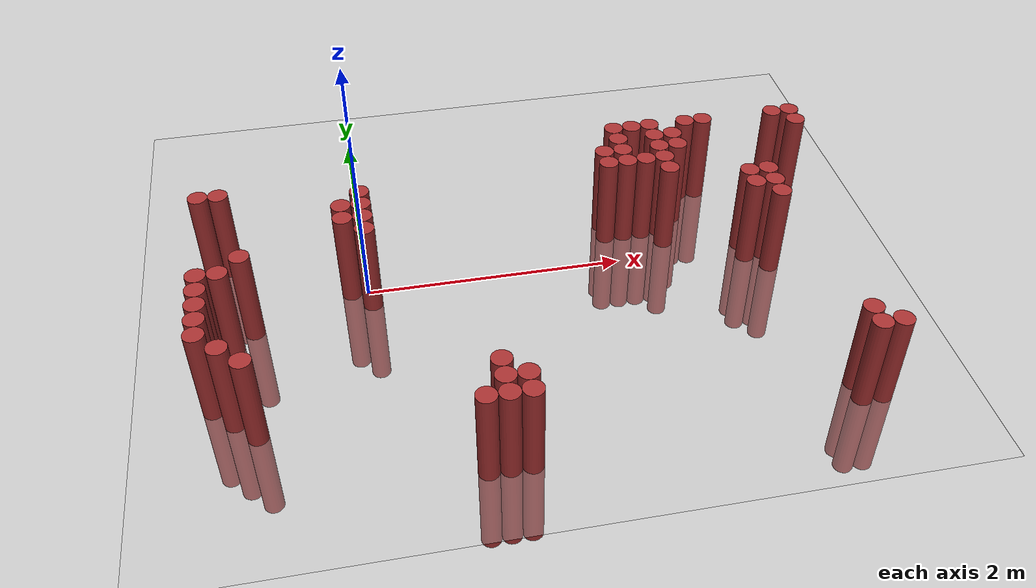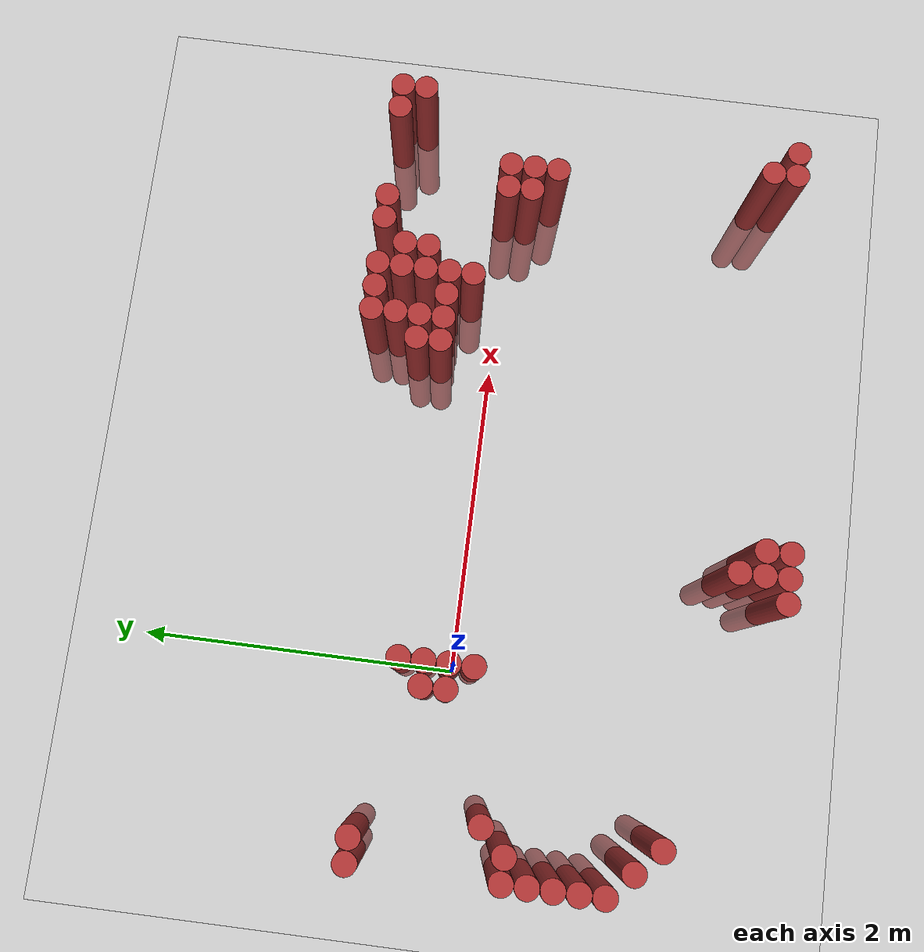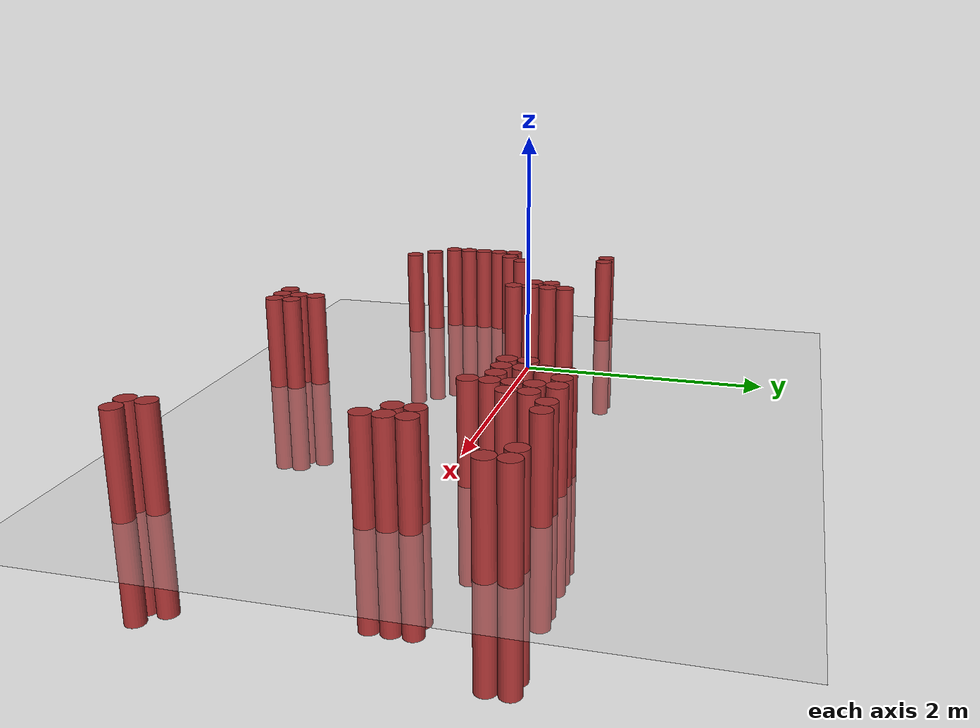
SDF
<sdf version="1.6">
 <world name="default">
  <model name="ground_plane">
   <static>1</static>
   <link name="link">
    <collision name="collision">
     <geometry><plane><normal>0 0 1</normal><size>100 100</size></plane></geometry>
     <surface><friction><ode><mu>100</mu><mu2>50</mu2></ode></friction></surface>
    </collision>
    <visual name="visual">
     <cast_shadows>0</cast_shadows>
     <geometry><plane><normal>0 0 1</normal><size>100 100</size></plane></geometry>
     <material>
      <script><uri>file://media/materials/scripts/gazebo.material</uri><name>Gazebo/Grey</name></script>
     </material>
    </visual>
   </link>
  </model>
  <model name="unit_cylinder_349">
   <static>1</static>
   <pose>-1.175000 -1.025000 0.000000 0.000000 0.000000 0.000000</pose>
   <link name="link">
    <inertial>
     <mass>1</mass>
     <inertia><ixx>0.145833</ixx><ixy>0</ixy><ixz>0</ixz><iyy>0.145833</iyy><iyz>0</iyz><izz>0.125</izz></inertia>
    </inertial>
    <collision name="collision">
     <geometry><cylinder><radius>0.075000</radius><length>1.5</length></cylinder></geometry>
    </collision>
    <visual name="visual">
     <geometry><cylinder><radius>0.075000</radius><length>1.5</length></cylinder></geometry>
     <material>
      <ambient>0.648000 0.192000 0.192000 1</ambient>
      <diffuse>0.648000 0.192000 0.192000 1</diffuse>
     </material>
     <material>
      <script><name>Gazebo/Grey</name><uri>file://media/materials/scripts/gazebo.material</uri></script>
     </material>
    </visual>
   </link>
  </model>
  <model name="unit_cylinder_350">
   <static>1</static>
   <pose>-1.175000 -0.875000 0.000000 0.000000 0.000000 0.000000</pose>
   <link name="link">
    <inertial>
     <mass>1</mass>
     <inertia><ixx>0.145833</ixx><ixy>0</ixy><ixz>0</ixz><iyy>0.145833</iyy><iyz>0</iyz><izz>0.125</izz></inertia>
    </inertial>
    <collision name="collision">
     <geometry><cylinder><radius>0.075000</radius><length>1.5</length></cylinder></geometry>
    </collision>
    <visual name="visual">
     <geometry><cylinder><radius>0.075000</radius><length>1.5</length></cylinder></geometry>
     <material>
      <ambient>0.648000 0.192000 0.192000 1</ambient>
      <diffuse>0.648000 0.192000 0.192000 1</diffuse>
     </material>
     <material>
      <script><name>Gazebo/Grey</name><uri>file://media/materials/scripts/gazebo.material</uri></script>
     </material>
    </visual>
   </link>
  </model>
  <model name="unit_cylinder_351">
   <static>1</static>
   <pose>-1.175000 -0.725000 0.000000 0.000000 0.000000 0.000000</pose>
   <link name="link">
    <inertial>
     <mass>1</mass>
     <inertia><ixx>0.145833</ixx><ixy>0</ixy><ixz>0</ixz><iyy>0.145833</iyy><iyz>0</iyz><izz>0.125</izz></inertia>
    </inertial>
    <collision name="collision">
     <geometry><cylinder><radius>0.075000</radius><length>1.5</length></cylinder></geometry>
    </collision>
    <visual name="visual">
     <geometry><cylinder><radius>0.075000</radius><length>1.5</length></cylinder></geometry>
     <material>
      <ambient>0.648000 0.192000 0.192000 1</ambient>
      <diffuse>0.648000 0.192000 0.192000 1</diffuse>
     </material>
     <material>
      <script><name>Gazebo/Grey</name><uri>file://media/materials/scripts/gazebo.material</uri></script>
     </material>
    </visual>
   </link>
  </model>
  <model name="unit_cylinder_352">
   <static>1</static>
   <pose>-1.175000 -0.575000 0.000000 0.000000 0.000000 0.000000</pose>
   <link name="link">
    <inertial>
     <mass>1</mass>
     <inertia><ixx>0.145833</ixx><ixy>0</ixy><ixz>0</ixz><iyy>0.145833</iyy><iyz>0</iyz><izz>0.125</izz></inertia>
    </inertial>
    <collision name="collision">
     <geometry><cylinder><radius>0.075000</radius><length>1.5</length></cylinder></geometry>
    </collision>
    <visual name="visual">
     <geometry><cylinder><radius>0.075000</radius><length>1.5</length></cylinder></geometry>
     <material>
      <ambient>0.648000 0.192000 0.192000 1</ambient>
      <diffuse>0.648000 0.192000 0.192000 1</diffuse>
     </material>
     <material>
      <script><name>Gazebo/Grey</name><uri>file://media/materials/scripts/gazebo.material</uri></script>
     </material>
    </visual>
   </link>
  </model>
  <model name="unit_cylinder_353">
   <static>1</static>
   <pose>-1.175000 -0.425000 0.000000 0.000000 0.000000 0.000000</pose>
   <link name="link">
    <inertial>
     <mass>1</mass>
     <inertia><ixx>0.145833</ixx><ixy>0</ixy><ixz>0</ixz><iyy>0.145833</iyy><iyz>0</iyz><izz>0.125</izz></inertia>
    </inertial>
    <collision name="collision">
     <geometry><cylinder><radius>0.075000</radius><length>1.5</length></cylinder></geometry>
    </collision>
    <visual name="visual">
     <geometry><cylinder><radius>0.075000</radius><length>1.5</length></cylinder></geometry>
     <material>
      <ambient>0.648000 0.192000 0.192000 1</ambient>
      <diffuse>0.648000 0.192000 0.192000 1</diffuse>
     </material>
     <material>
      <script><name>Gazebo/Grey</name><uri>file://media/materials/scripts/gazebo.material</uri></script>
     </material>
    </visual>
   </link>
  </model>
  <model name="unit_cylinder_354">
   <static>1</static>
   <pose>-1.175000 0.475000 0.000000 0.000000 0.000000 0.000000</pose>
   <link name="link">
    <inertial>
     <mass>1</mass>
     <inertia><ixx>0.145833</ixx><ixy>0</ixy><ixz>0</ixz><iyy>0.145833</iyy><iyz>0</iyz><izz>0.125</izz></inertia>
    </inertial>
    <collision name="collision">
     <geometry><cylinder><radius>0.075000</radius><length>1.5</length></cylinder></geometry>
    </collision>
    <visual name="visual">
     <geometry><cylinder><radius>0.075000</radius><length>1.5</length></cylinder></geometry>
     <material>
      <ambient>0.648000 0.192000 0.192000 1</ambient>
      <diffuse>0.648000 0.192000 0.192000 1</diffuse>
     </material>
     <material>
      <script><name>Gazebo/Grey</name><uri>file://media/materials/scripts/gazebo.material</uri></script>
     </material>
    </visual>
   </link>
  </model>
  <model name="unit_cylinder_357">
   <static>1</static>
   <pose>-1.025000 -1.175000 0.000000 0.000000 0.000000 0.000000</pose>
   <link name="link">
    <inertial>
     <mass>1</mass>
     <inertia><ixx>0.145833</ixx><ixy>0</ixy><ixz>0</ixz><iyy>0.145833</iyy><iyz>0</iyz><izz>0.125</izz></inertia>
    </inertial>
    <collision name="collision">
     <geometry><cylinder><radius>0.075000</radius><length>1.5</length></cylinder></geometry>
    </collision>
    <visual name="visual">
     <geometry><cylinder><radius>0.075000</radius><length>1.5</length></cylinder></geometry>
     <material>
      <ambient>0.648000 0.192000 0.192000 1</ambient>
      <diffuse>0.648000 0.192000 0.192000 1</diffuse>
     </material>
     <material>
      <script><name>Gazebo/Grey</name><uri>file://media/materials/scripts/gazebo.material</uri></script>
     </material>
    </visual>
   </link>
  </model>
  <model name="unit_cylinder_358">
   <static>1</static>
   <pose>-1.025000 -0.425000 0.000000 0.000000 0.000000 0.000000</pose>
   <link name="link">
    <inertial>
     <mass>1</mass>
     <inertia><ixx>0.145833</ixx><ixy>0</ixy><ixz>0</ixz><iyy>0.145833</iyy><iyz>0</iyz><izz>0.125</izz></inertia>
    </inertial>
    <collision name="collision">
     <geometry><cylinder><radius>0.075000</radius><length>1.5</length></cylinder></geometry>
    </collision>
    <visual name="visual">
     <geometry><cylinder><radius>0.075000</radius><length>1.5</length></cylinder></geometry>
     <material>
      <ambient>0.648000 0.192000 0.192000 1</ambient>
      <diffuse>0.648000 0.192000 0.192000 1</diffuse>
     </material>
     <material>
      <script><name>Gazebo/Grey</name><uri>file://media/materials/scripts/gazebo.material</uri></script>
     </material>
    </visual>
   </link>
  </model>
  <model name="unit_cylinder_359">
   <static>1</static>
   <pose>-1.025000 0.475000 0.000000 0.000000 0.000000 0.000000</pose>
   <link name="link">
    <inertial>
     <mass>1</mass>
     <inertia><ixx>0.145833</ixx><ixy>0</ixy><ixz>0</ixz><iyy>0.145833</iyy><iyz>0</iyz><izz>0.125</izz></inertia>
    </inertial>
    <collision name="collision">
     <geometry><cylinder><radius>0.075000</radius><length>1.5</length></cylinder></geometry>
    </collision>
    <visual name="visual">
     <geometry><cylinder><radius>0.075000</radius><length>1.5</length></cylinder></geometry>
     <material>
      <ambient>0.648000 0.192000 0.192000 1</ambient>
      <diffuse>0.648000 0.192000 0.192000 1</diffuse>
     </material>
     <material>
      <script><name>Gazebo/Grey</name><uri>file://media/materials/scripts/gazebo.material</uri></script>
     </material>
    </visual>
   </link>
  </model>
  <model name="unit_cylinder_362">
   <static>1</static>
   <pose>-0.875000 -1.325000 0.000000 0.000000 0.000000 0.000000</pose>
   <link name="link">
    <inertial>
     <mass>1</mass>
     <inertia><ixx>0.145833</ixx><ixy>0</ixy><ixz>0</ixz><iyy>0.145833</iyy><iyz>0</iyz><izz>0.125</izz></inertia>
    </inertial>
    <collision name="collision">
     <geometry><cylinder><radius>0.075000</radius><length>1.5</length></cylinder></geometry>
    </collision>
    <visual name="visual">
     <geometry><cylinder><radius>0.075000</radius><length>1.5</length></cylinder></geometry>
     <material>
      <ambient>0.648000 0.192000 0.192000 1</ambient>
      <diffuse>0.648000 0.192000 0.192000 1</diffuse>
     </material>
     <material>
      <script><name>Gazebo/Grey</name><uri>file://media/materials/scripts/gazebo.material</uri></script>
     </material>
    </visual>
   </link>
  </model>
  <model name="unit_cylinder_363">
   <static>1</static>
   <pose>-0.875000 -0.275000 0.000000 0.000000 0.000000 0.000000</pose>
   <link name="link">
    <inertial>
     <mass>1</mass>
     <inertia><ixx>0.145833</ixx><ixy>0</ixy><ixz>0</ixz><iyy>0.145833</iyy><iyz>0</iyz><izz>0.125</izz></inertia>
    </inertial>
    <collision name="collision">
     <geometry><cylinder><radius>0.075000</radius><length>1.5</length></cylinder></geometry>
    </collision>
    <visual name="visual">
     <geometry><cylinder><radius>0.075000</radius><length>1.5</length></cylinder></geometry>
     <material>
      <ambient>0.648000 0.192000 0.192000 1</ambient>
      <diffuse>0.648000 0.192000 0.192000 1</diffuse>
     </material>
     <material>
      <script><name>Gazebo/Grey</name><uri>file://media/materials/scripts/gazebo.material</uri></script>
     </material>
    </visual>
   </link>
  </model>
  <model name="unit_cylinder_375">
   <static>1</static>
   <pose>-0.125000 0.025000 0.000000 0.000000 0.000000 0.000000</pose>
   <link name="link">
    <inertial>
     <mass>1</mass>
     <inertia><ixx>0.145833</ixx><ixy>0</ixy><ixz>0</ixz><iyy>0.145833</iyy><iyz>0</iyz><izz>0.125</izz></inertia>
    </inertial>
    <collision name="collision">
     <geometry><cylinder><radius>0.075000</radius><length>1.5</length></cylinder></geometry>
    </collision>
    <visual name="visual">
     <geometry><cylinder><radius>0.075000</radius><length>1.5</length></cylinder></geometry>
     <material>
      <ambient>0.648000 0.192000 0.192000 1</ambient>
      <diffuse>0.648000 0.192000 0.192000 1</diffuse>
     </material>
     <material>
      <script><name>Gazebo/Grey</name><uri>file://media/materials/scripts/gazebo.material</uri></script>
     </material>
    </visual>
   </link>
  </model>
  <model name="unit_cylinder_376">
   <static>1</static>
   <pose>-0.125000 0.175000 0.000000 0.000000 0.000000 0.000000</pose>
   <link name="link">
    <inertial>
     <mass>1</mass>
     <inertia><ixx>0.145833</ixx><ixy>0</ixy><ixz>0</ixz><iyy>0.145833</iyy><iyz>0</iyz><izz>0.125</izz></inertia>
    </inertial>
    <collision name="collision">
     <geometry><cylinder><radius>0.075000</radius><length>1.5</length></cylinder></geometry>
    </collision>
    <visual name="visual">
     <geometry><cylinder><radius>0.075000</radius><length>1.5</length></cylinder></geometry>
     <material>
      <ambient>0.648000 0.192000 0.192000 1</ambient>
      <diffuse>0.648000 0.192000 0.192000 1</diffuse>
     </material>
     <material>
      <script><name>Gazebo/Grey</name><uri>file://media/materials/scripts/gazebo.material</uri></script>
     </material>
    </visual>
   </link>
  </model>
  <model name="unit_cylinder_382">
   <static>1</static>
   <pose>0.025000 -0.125000 0.000000 0.000000 0.000000 0.000000</pose>
   <link name="link">
    <inertial>
     <mass>1</mass>
     <inertia><ixx>0.145833</ixx><ixy>0</ixy><ixz>0</ixz><iyy>0.145833</iyy><iyz>0</iyz><izz>0.125</izz></inertia>
    </inertial>
    <collision name="collision">
     <geometry><cylinder><radius>0.075000</radius><length>1.5</length></cylinder></geometry>
    </collision>
    <visual name="visual">
     <geometry><cylinder><radius>0.075000</radius><length>1.5</length></cylinder></geometry>
     <material>
      <ambient>0.648000 0.192000 0.192000 1</ambient>
      <diffuse>0.648000 0.192000 0.192000 1</diffuse>
     </material>
     <material>
      <script><name>Gazebo/Grey</name><uri>file://media/materials/scripts/gazebo.material</uri></script>
     </material>
    </visual>
   </link>
  </model>
  <model name="unit_cylinder_383">
   <static>1</static>
   <pose>0.025000 0.025000 0.000000 0.000000 0.000000 0.000000</pose>
   <link name="link">
    <inertial>
     <mass>1</mass>
     <inertia><ixx>0.145833</ixx><ixy>0</ixy><ixz>0</ixz><iyy>0.145833</iyy><iyz>0</iyz><izz>0.125</izz></inertia>
    </inertial>
    <collision name="collision">
     <geometry><cylinder><radius>0.075000</radius><length>1.5</length></cylinder></geometry>
    </collision>
    <visual name="visual">
     <geometry><cylinder><radius>0.075000</radius><length>1.5</length></cylinder></geometry>
     <material>
      <ambient>0.648000 0.192000 0.192000 1</ambient>
      <diffuse>0.648000 0.192000 0.192000 1</diffuse>
     </material>
     <material>
      <script><name>Gazebo/Grey</name><uri>file://media/materials/scripts/gazebo.material</uri></script>
     </material>
    </visual>
   </link>
  </model>
  <model name="unit_cylinder_384">
   <static>1</static>
   <pose>0.025000 0.175000 0.000000 0.000000 0.000000 0.000000</pose>
   <link name="link">
    <inertial>
     <mass>1</mass>
     <inertia><ixx>0.145833</ixx><ixy>0</ixy><ixz>0</ixz><iyy>0.145833</iyy><iyz>0</iyz><izz>0.125</izz></inertia>
    </inertial>
    <collision name="collision">
     <geometry><cylinder><radius>0.075000</radius><length>1.5</length></cylinder></geometry>
    </collision>
    <visual name="visual">
     <geometry><cylinder><radius>0.075000</radius><length>1.5</length></cylinder></geometry>
     <material>
      <ambient>0.648000 0.192000 0.192000 1</ambient>
      <diffuse>0.648000 0.192000 0.192000 1</diffuse>
     </material>
     <material>
      <script><name>Gazebo/Grey</name><uri>file://media/materials/scripts/gazebo.material</uri></script>
     </material>
    </visual>
   </link>
  </model>
  <model name="unit_cylinder_385">
   <static>1</static>
   <pose>0.025000 0.325000 0.000000 0.000000 0.000000 0.000000</pose>
   <link name="link">
    <inertial>
     <mass>1</mass>
     <inertia><ixx>0.145833</ixx><ixy>0</ixy><ixz>0</ixz><iyy>0.145833</iyy><iyz>0</iyz><izz>0.125</izz></inertia>
    </inertial>
    <collision name="collision">
     <geometry><cylinder><radius>0.075000</radius><length>1.5</length></cylinder></geometry>
    </collision>
    <visual name="visual">
     <geometry><cylinder><radius>0.075000</radius><length>1.5</length></cylinder></geometry>
     <material>
      <ambient>0.648000 0.192000 0.192000 1</ambient>
      <diffuse>0.648000 0.192000 0.192000 1</diffuse>
     </material>
     <material>
      <script><name>Gazebo/Grey</name><uri>file://media/materials/scripts/gazebo.material</uri></script>
     </material>
    </visual>
   </link>
  </model>
  <model name="unit_cylinder_410">
   <static>1</static>
   <pose>0.625000 -1.925000 0.000000 0.000000 0.000000 0.000000</pose>
   <link name="link">
    <inertial>
     <mass>1</mass>
     <inertia><ixx>0.145833</ixx><ixy>0</ixy><ixz>0</ixz><iyy>0.145833</iyy><iyz>0</iyz><izz>0.125</izz></inertia>
    </inertial>
    <collision name="collision">
     <geometry><cylinder><radius>0.075000</radius><length>1.5</length></cylinder></geometry>
    </collision>
    <visual name="visual">
     <geometry><cylinder><radius>0.075000</radius><length>1.5</length></cylinder></geometry>
     <material>
      <ambient>0.648000 0.192000 0.192000 1</ambient>
      <diffuse>0.648000 0.192000 0.192000 1</diffuse>
     </material>
     <material>
      <script><name>Gazebo/Grey</name><uri>file://media/materials/scripts/gazebo.material</uri></script>
     </material>
    </visual>
   </link>
  </model>
  <model name="unit_cylinder_415">
   <static>1</static>
   <pose>0.775000 -1.925000 0.000000 0.000000 0.000000 0.000000</pose>
   <link name="link">
    <inertial>
     <mass>1</mass>
     <inertia><ixx>0.145833</ixx><ixy>0</ixy><ixz>0</ixz><iyy>0.145833</iyy><iyz>0</iyz><izz>0.125</izz></inertia>
    </inertial>
    <collision name="collision">
     <geometry><cylinder><radius>0.075000</radius><length>1.5</length></cylinder></geometry>
    </collision>
    <visual name="visual">
     <geometry><cylinder><radius>0.075000</radius><length>1.5</length></cylinder></geometry>
     <material>
      <ambient>0.648000 0.192000 0.192000 1</ambient>
      <diffuse>0.648000 0.192000 0.192000 1</diffuse>
     </material>
     <material>
      <script><name>Gazebo/Grey</name><uri>file://media/materials/scripts/gazebo.material</uri></script>
     </material>
    </visual>
   </link>
  </model>
  <model name="unit_cylinder_416">
   <static>1</static>
   <pose>0.775000 -1.775000 0.000000 0.000000 0.000000 0.000000</pose>
   <link name="link">
    <inertial>
     <mass>1</mass>
     <inertia><ixx>0.145833</ixx><ixy>0</ixy><ixz>0</ixz><iyy>0.145833</iyy><iyz>0</iyz><izz>0.125</izz></inertia>
    </inertial>
    <collision name="collision">
     <geometry><cylinder><radius>0.075000</radius><length>1.5</length></cylinder></geometry>
    </collision>
    <visual name="visual">
     <geometry><cylinder><radius>0.075000</radius><length>1.5</length></cylinder></geometry>
     <material>
      <ambient>0.648000 0.192000 0.192000 1</ambient>
      <diffuse>0.648000 0.192000 0.192000 1</diffuse>
     </material>
     <material>
      <script><name>Gazebo/Grey</name><uri>file://media/materials/scripts/gazebo.material</uri></script>
     </material>
    </visual>
   </link>
  </model>
  <model name="unit_cylinder_417">
   <static>1</static>
   <pose>0.775000 -1.625000 0.000000 0.000000 0.000000 0.000000</pose>
   <link name="link">
    <inertial>
     <mass>1</mass>
     <inertia><ixx>0.145833</ixx><ixy>0</ixy><ixz>0</ixz><iyy>0.145833</iyy><iyz>0</iyz><izz>0.125</izz></inertia>
    </inertial>
    <collision name="collision">
     <geometry><cylinder><radius>0.075000</radius><length>1.5</length></cylinder></geometry>
    </collision>
    <visual name="visual">
     <geometry><cylinder><radius>0.075000</radius><length>1.5</length></cylinder></geometry>
     <material>
      <ambient>0.648000 0.192000 0.192000 1</ambient>
      <diffuse>0.648000 0.192000 0.192000 1</diffuse>
     </material>
     <material>
      <script><name>Gazebo/Grey</name><uri>file://media/materials/scripts/gazebo.material</uri></script>
     </material>
    </visual>
   </link>
  </model>
  <model name="unit_cylinder_421">
   <static>1</static>
   <pose>0.925000 -1.925000 0.000000 0.000000 0.000000 0.000000</pose>
   <link name="link">
    <inertial>
     <mass>1</mass>
     <inertia><ixx>0.145833</ixx><ixy>0</ixy><ixz>0</ixz><iyy>0.145833</iyy><iyz>0</iyz><izz>0.125</izz></inertia>
    </inertial>
    <collision name="collision">
     <geometry><cylinder><radius>0.075000</radius><length>1.5</length></cylinder></geometry>
    </collision>
    <visual name="visual">
     <geometry><cylinder><radius>0.075000</radius><length>1.5</length></cylinder></geometry>
     <material>
      <ambient>0.648000 0.192000 0.192000 1</ambient>
      <diffuse>0.648000 0.192000 0.192000 1</diffuse>
     </material>
     <material>
      <script><name>Gazebo/Grey</name><uri>file://media/materials/scripts/gazebo.material</uri></script>
     </material>
    </visual>
   </link>
  </model>
  <model name="unit_cylinder_422">
   <static>1</static>
   <pose>0.925000 -1.775000 0.000000 0.000000 0.000000 0.000000</pose>
   <link name="link">
    <inertial>
     <mass>1</mass>
     <inertia><ixx>0.145833</ixx><ixy>0</ixy><ixz>0</ixz><iyy>0.145833</iyy><iyz>0</iyz><izz>0.125</izz></inertia>
    </inertial>
    <collision name="collision">
     <geometry><cylinder><radius>0.075000</radius><length>1.5</length></cylinder></geometry>
    </collision>
    <visual name="visual">
     <geometry><cylinder><radius>0.075000</radius><length>1.5</length></cylinder></geometry>
     <material>
      <ambient>0.648000 0.192000 0.192000 1</ambient>
      <diffuse>0.648000 0.192000 0.192000 1</diffuse>
     </material>
     <material>
      <script><name>Gazebo/Grey</name><uri>file://media/materials/scripts/gazebo.material</uri></script>
     </material>
    </visual>
   </link>
  </model>
  <model name="unit_cylinder_430">
   <static>1</static>
   <pose>1.975000 0.325000 0.000000 0.000000 0.000000 0.000000</pose>
   <link name="link">
    <inertial>
     <mass>1</mass>
     <inertia><ixx>0.145833</ixx><ixy>0</ixy><ixz>0</ixz><iyy>0.145833</iyy><iyz>0</iyz><izz>0.125</izz></inertia>
    </inertial>
    <collision name="collision">
     <geometry><cylinder><radius>0.075000</radius><length>1.5</length></cylinder></geometry>
    </collision>
    <visual name="visual">
     <geometry><cylinder><radius>0.075000</radius><length>1.5</length></cylinder></geometry>
     <material>
      <ambient>0.648000 0.192000 0.192000 1</ambient>
      <diffuse>0.648000 0.192000 0.192000 1</diffuse>
     </material>
     <material>
      <script><name>Gazebo/Grey</name><uri>file://media/materials/scripts/gazebo.material</uri></script>
     </material>
    </visual>
   </link>
  </model>
  <model name="unit_cylinder_431">
   <static>1</static>
   <pose>1.975000 0.475000 0.000000 0.000000 0.000000 0.000000</pose>
   <link name="link">
    <inertial>
     <mass>1</mass>
     <inertia><ixx>0.145833</ixx><ixy>0</ixy><ixz>0</ixz><iyy>0.145833</iyy><iyz>0</iyz><izz>0.125</izz></inertia>
    </inertial>
    <collision name="collision">
     <geometry><cylinder><radius>0.075000</radius><length>1.5</length></cylinder></geometry>
    </collision>
    <visual name="visual">
     <geometry><cylinder><radius>0.075000</radius><length>1.5</length></cylinder></geometry>
     <material>
      <ambient>0.648000 0.192000 0.192000 1</ambient>
      <diffuse>0.648000 0.192000 0.192000 1</diffuse>
     </material>
     <material>
      <script><name>Gazebo/Grey</name><uri>file://media/materials/scripts/gazebo.material</uri></script>
     </material>
    </visual>
   </link>
  </model>
  <model name="unit_cylinder_432">
   <static>1</static>
   <pose>2.125000 0.325000 0.000000 0.000000 0.000000 0.000000</pose>
   <link name="link">
    <inertial>
     <mass>1</mass>
     <inertia><ixx>0.145833</ixx><ixy>0</ixy><ixz>0</ixz><iyy>0.145833</iyy><iyz>0</iyz><izz>0.125</izz></inertia>
    </inertial>
    <collision name="collision">
     <geometry><cylinder><radius>0.075000</radius><length>1.5</length></cylinder></geometry>
    </collision>
    <visual name="visual">
     <geometry><cylinder><radius>0.075000</radius><length>1.5</length></cylinder></geometry>
     <material>
      <ambient>0.648000 0.192000 0.192000 1</ambient>
      <diffuse>0.648000 0.192000 0.192000 1</diffuse>
     </material>
     <material>
      <script><name>Gazebo/Grey</name><uri>file://media/materials/scripts/gazebo.material</uri></script>
     </material>
    </visual>
   </link>
  </model>
  <model name="unit_cylinder_433">
   <static>1</static>
   <pose>2.125000 0.475000 0.000000 0.000000 0.000000 0.000000</pose>
   <link name="link">
    <inertial>
     <mass>1</mass>
     <inertia><ixx>0.145833</ixx><ixy>0</ixy><ixz>0</ixz><iyy>0.145833</iyy><iyz>0</iyz><izz>0.125</izz></inertia>
    </inertial>
    <collision name="collision">
     <geometry><cylinder><radius>0.075000</radius><length>1.5</length></cylinder></geometry>
    </collision>
    <visual name="visual">
     <geometry><cylinder><radius>0.075000</radius><length>1.5</length></cylinder></geometry>
     <material>
      <ambient>0.648000 0.192000 0.192000 1</ambient>
      <diffuse>0.648000 0.192000 0.192000 1</diffuse>
     </material>
     <material>
      <script><name>Gazebo/Grey</name><uri>file://media/materials/scripts/gazebo.material</uri></script>
     </material>
    </visual>
   </link>
  </model>
  <model name="unit_cylinder_434">
   <static>1</static>
   <pose>2.125000 0.625000 0.000000 0.000000 0.000000 0.000000</pose>
   <link name="link">
    <inertial>
     <mass>1</mass>
     <inertia><ixx>0.145833</ixx><ixy>0</ixy><ixz>0</ixz><iyy>0.145833</iyy><iyz>0</iyz><izz>0.125</izz></inertia>
    </inertial>
    <collision name="collision">
     <geometry><cylinder><radius>0.075000</radius><length>1.5</length></cylinder></geometry>
    </collision>
    <visual name="visual">
     <geometry><cylinder><radius>0.075000</radius><length>1.5</length></cylinder></geometry>
     <material>
      <ambient>0.648000 0.192000 0.192000 1</ambient>
      <diffuse>0.648000 0.192000 0.192000 1</diffuse>
     </material>
     <material>
      <script><name>Gazebo/Grey</name><uri>file://media/materials/scripts/gazebo.material</uri></script>
     </material>
    </visual>
   </link>
  </model>
  <model name="unit_cylinder_435">
   <static>1</static>
   <pose>2.125000 0.775000 0.000000 0.000000 0.000000 0.000000</pose>
   <link name="link">
    <inertial>
     <mass>1</mass>
     <inertia><ixx>0.145833</ixx><ixy>0</ixy><ixz>0</ixz><iyy>0.145833</iyy><iyz>0</iyz><izz>0.125</izz></inertia>
    </inertial>
    <collision name="collision">
     <geometry><cylinder><radius>0.075000</radius><length>1.5</length></cylinder></geometry>
    </collision>
    <visual name="visual">
     <geometry><cylinder><radius>0.075000</radius><length>1.5</length></cylinder></geometry>
     <material>
      <ambient>0.648000 0.192000 0.192000 1</ambient>
      <diffuse>0.648000 0.192000 0.192000 1</diffuse>
     </material>
     <material>
      <script><name>Gazebo/Grey</name><uri>file://media/materials/scripts/gazebo.material</uri></script>
     </material>
    </visual>
   </link>
  </model>
  <model name="unit_cylinder_439">
   <static>1</static>
   <pose>2.275000 0.325000 0.000000 0.000000 0.000000 0.000000</pose>
   <link name="link">
    <inertial>
     <mass>1</mass>
     <inertia><ixx>0.145833</ixx><ixy>0</ixy><ixz>0</ixz><iyy>0.145833</iyy><iyz>0</iyz><izz>0.125</izz></inertia>
    </inertial>
    <collision name="collision">
     <geometry><cylinder><radius>0.075000</radius><length>1.5</length></cylinder></geometry>
    </collision>
    <visual name="visual">
     <geometry><cylinder><radius>0.075000</radius><length>1.5</length></cylinder></geometry>
     <material>
      <ambient>0.648000 0.192000 0.192000 1</ambient>
      <diffuse>0.648000 0.192000 0.192000 1</diffuse>
     </material>
     <material>
      <script><name>Gazebo/Grey</name><uri>file://media/materials/scripts/gazebo.material</uri></script>
     </material>
    </visual>
   </link>
  </model>
  <model name="unit_cylinder_440">
   <static>1</static>
   <pose>2.275000 0.775000 0.000000 0.000000 0.000000 0.000000</pose>
   <link name="link">
    <inertial>
     <mass>1</mass>
     <inertia><ixx>0.145833</ixx><ixy>0</ixy><ixz>0</ixz><iyy>0.145833</iyy><iyz>0</iyz><izz>0.125</izz></inertia>
    </inertial>
    <collision name="collision">
     <geometry><cylinder><radius>0.075000</radius><length>1.5</length></cylinder></geometry>
    </collision>
    <visual name="visual">
     <geometry><cylinder><radius>0.075000</radius><length>1.5</length></cylinder></geometry>
     <material>
      <ambient>0.648000 0.192000 0.192000 1</ambient>
      <diffuse>0.648000 0.192000 0.192000 1</diffuse>
     </material>
     <material>
      <script><name>Gazebo/Grey</name><uri>file://media/materials/scripts/gazebo.material</uri></script>
     </material>
    </visual>
   </link>
  </model>
  <model name="unit_cylinder_448">
   <static>1</static>
   <pose>2.425000 0.175000 0.000000 0.000000 0.000000 0.000000</pose>
   <link name="link">
    <inertial>
     <mass>1</mass>
     <inertia><ixx>0.145833</ixx><ixy>0</ixy><ixz>0</ixz><iyy>0.145833</iyy><iyz>0</iyz><izz>0.125</izz></inertia>
    </inertial>
    <collision name="collision">
     <geometry><cylinder><radius>0.075000</radius><length>1.5</length></cylinder></geometry>
    </collision>
    <visual name="visual">
     <geometry><cylinder><radius>0.075000</radius><length>1.5</length></cylinder></geometry>
     <material>
      <ambient>0.648000 0.192000 0.192000 1</ambient>
      <diffuse>0.648000 0.192000 0.192000 1</diffuse>
     </material>
     <material>
      <script><name>Gazebo/Grey</name><uri>file://media/materials/scripts/gazebo.material</uri></script>
     </material>
    </visual>
   </link>
  </model>
  <model name="unit_cylinder_449">
   <static>1</static>
   <pose>2.425000 0.325000 0.000000 0.000000 0.000000 0.000000</pose>
   <link name="link">
    <inertial>
     <mass>1</mass>
     <inertia><ixx>0.145833</ixx><ixy>0</ixy><ixz>0</ixz><iyy>0.145833</iyy><iyz>0</iyz><izz>0.125</izz></inertia>
    </inertial>
    <collision name="collision">
     <geometry><cylinder><radius>0.075000</radius><length>1.5</length></cylinder></geometry>
    </collision>
    <visual name="visual">
     <geometry><cylinder><radius>0.075000</radius><length>1.5</length></cylinder></geometry>
     <material>
      <ambient>0.648000 0.192000 0.192000 1</ambient>
      <diffuse>0.648000 0.192000 0.192000 1</diffuse>
     </material>
     <material>
      <script><name>Gazebo/Grey</name><uri>file://media/materials/scripts/gazebo.material</uri></script>
     </material>
    </visual>
   </link>
  </model>
  <model name="unit_cylinder_450">
   <static>1</static>
   <pose>2.425000 0.475000 0.000000 0.000000 0.000000 0.000000</pose>
   <link name="link">
    <inertial>
     <mass>1</mass>
     <inertia><ixx>0.145833</ixx><ixy>0</ixy><ixz>0</ixz><iyy>0.145833</iyy><iyz>0</iyz><izz>0.125</izz></inertia>
    </inertial>
    <collision name="collision">
     <geometry><cylinder><radius>0.075000</radius><length>1.5</length></cylinder></geometry>
    </collision>
    <visual name="visual">
     <geometry><cylinder><radius>0.075000</radius><length>1.5</length></cylinder></geometry>
     <material>
      <ambient>0.648000 0.192000 0.192000 1</ambient>
      <diffuse>0.648000 0.192000 0.192000 1</diffuse>
     </material>
     <material>
      <script><name>Gazebo/Grey</name><uri>file://media/materials/scripts/gazebo.material</uri></script>
     </material>
    </visual>
   </link>
  </model>
  <model name="unit_cylinder_451">
   <static>1</static>
   <pose>2.425000 0.625000 0.000000 0.000000 0.000000 0.000000</pose>
   <link name="link">
    <inertial>
     <mass>1</mass>
     <inertia><ixx>0.145833</ixx><ixy>0</ixy><ixz>0</ixz><iyy>0.145833</iyy><iyz>0</iyz><izz>0.125</izz></inertia>
    </inertial>
    <collision name="collision">
     <geometry><cylinder><radius>0.075000</radius><length>1.5</length></cylinder></geometry>
    </collision>
    <visual name="visual">
     <geometry><cylinder><radius>0.075000</radius><length>1.5</length></cylinder></geometry>
     <material>
      <ambient>0.648000 0.192000 0.192000 1</ambient>
      <diffuse>0.648000 0.192000 0.192000 1</diffuse>
     </material>
     <material>
      <script><name>Gazebo/Grey</name><uri>file://media/materials/scripts/gazebo.material</uri></script>
     </material>
    </visual>
   </link>
  </model>
  <model name="unit_cylinder_452">
   <static>1</static>
   <pose>2.425000 0.775000 0.000000 0.000000 0.000000 0.000000</pose>
   <link name="link">
    <inertial>
     <mass>1</mass>
     <inertia><ixx>0.145833</ixx><ixy>0</ixy><ixz>0</ixz><iyy>0.145833</iyy><iyz>0</iyz><izz>0.125</izz></inertia>
    </inertial>
    <collision name="collision">
     <geometry><cylinder><radius>0.075000</radius><length>1.5</length></cylinder></geometry>
    </collision>
    <visual name="visual">
     <geometry><cylinder><radius>0.075000</radius><length>1.5</length></cylinder></geometry>
     <material>
      <ambient>0.648000 0.192000 0.192000 1</ambient>
      <diffuse>0.648000 0.192000 0.192000 1</diffuse>
     </material>
     <material>
      <script><name>Gazebo/Grey</name><uri>file://media/materials/scripts/gazebo.material</uri></script>
     </material>
    </visual>
   </link>
  </model>
  <model name="unit_cylinder_457">
   <static>1</static>
   <pose>2.575000 0.475000 0.000000 0.000000 0.000000 0.000000</pose>
   <link name="link">
    <inertial>
     <mass>1</mass>
     <inertia><ixx>0.145833</ixx><ixy>0</ixy><ixz>0</ixz><iyy>0.145833</iyy><iyz>0</iyz><izz>0.125</izz></inertia>
    </inertial>
    <collision name="collision">
     <geometry><cylinder><radius>0.075000</radius><length>1.5</length></cylinder></geometry>
    </collision>
    <visual name="visual">
     <geometry><cylinder><radius>0.075000</radius><length>1.5</length></cylinder></geometry>
     <material>
      <ambient>0.648000 0.192000 0.192000 1</ambient>
      <diffuse>0.648000 0.192000 0.192000 1</diffuse>
     </material>
     <material>
      <script><name>Gazebo/Grey</name><uri>file://media/materials/scripts/gazebo.material</uri></script>
     </material>
    </visual>
   </link>
  </model>
  <model name="unit_cylinder_458">
   <static>1</static>
   <pose>2.575000 0.625000 0.000000 0.000000 0.000000 0.000000</pose>
   <link name="link">
    <inertial>
     <mass>1</mass>
     <inertia><ixx>0.145833</ixx><ixy>0</ixy><ixz>0</ixz><iyy>0.145833</iyy><iyz>0</iyz><izz>0.125</izz></inertia>
    </inertial>
    <collision name="collision">
     <geometry><cylinder><radius>0.075000</radius><length>1.5</length></cylinder></geometry>
    </collision>
    <visual name="visual">
     <geometry><cylinder><radius>0.075000</radius><length>1.5</length></cylinder></geometry>
     <material>
      <ambient>0.648000 0.192000 0.192000 1</ambient>
      <diffuse>0.648000 0.192000 0.192000 1</diffuse>
     </material>
     <material>
      <script><name>Gazebo/Grey</name><uri>file://media/materials/scripts/gazebo.material</uri></script>
     </material>
    </visual>
   </link>
  </model>
  <model name="unit_cylinder_463">
   <static>1</static>
   <pose>2.725000 0.775000 0.000000 0.000000 0.000000 0.000000</pose>
   <link name="link">
    <inertial>
     <mass>1</mass>
     <inertia><ixx>0.145833</ixx><ixy>0</ixy><ixz>0</ixz><iyy>0.145833</iyy><iyz>0</iyz><izz>0.125</izz></inertia>
    </inertial>
    <collision name="collision">
     <geometry><cylinder><radius>0.075000</radius><length>1.5</length></cylinder></geometry>
    </collision>
    <visual name="visual">
     <geometry><cylinder><radius>0.075000</radius><length>1.5</length></cylinder></geometry>
     <material>
      <ambient>0.648000 0.192000 0.192000 1</ambient>
      <diffuse>0.648000 0.192000 0.192000 1</diffuse>
     </material>
     <material>
      <script><name>Gazebo/Grey</name><uri>file://media/materials/scripts/gazebo.material</uri></script>
     </material>
    </visual>
   </link>
  </model>
  <model name="unit_cylinder_468">
   <static>1</static>
   <pose>2.875000 0.775000 0.000000 0.000000 0.000000 0.000000</pose>
   <link name="link">
    <inertial>
     <mass>1</mass>
     <inertia><ixx>0.145833</ixx><ixy>0</ixy><ixz>0</ixz><iyy>0.145833</iyy><iyz>0</iyz><izz>0.125</izz></inertia>
    </inertial>
    <collision name="collision">
     <geometry><cylinder><radius>0.075000</radius><length>1.5</length></cylinder></geometry>
    </collision>
    <visual name="visual">
     <geometry><cylinder><radius>0.075000</radius><length>1.5</length></cylinder></geometry>
     <material>
      <ambient>0.648000 0.192000 0.192000 1</ambient>
      <diffuse>0.648000 0.192000 0.192000 1</diffuse>
     </material>
     <material>
      <script><name>Gazebo/Grey</name><uri>file://media/materials/scripts/gazebo.material</uri></script>
     </material>
    </visual>
   </link>
  </model>
  <model name="unit_cylinder_473">
   <static>1</static>
   <pose>3.025000 -0.125000 0.000000 0.000000 0.000000 0.000000</pose>
   <link name="link">
    <inertial>
     <mass>1</mass>
     <inertia><ixx>0.145833</ixx><ixy>0</ixy><ixz>0</ixz><iyy>0.145833</iyy><iyz>0</iyz><izz>0.125</izz></inertia>
    </inertial>
    <collision name="collision">
     <geometry><cylinder><radius>0.075000</radius><length>1.5</length></cylinder></geometry>
    </collision>
    <visual name="visual">
     <geometry><cylinder><radius>0.075000</radius><length>1.5</length></cylinder></geometry>
     <material>
      <ambient>0.648000 0.192000 0.192000 1</ambient>
      <diffuse>0.648000 0.192000 0.192000 1</diffuse>
     </material>
     <material>
      <script><name>Gazebo/Grey</name><uri>file://media/materials/scripts/gazebo.material</uri></script>
     </material>
    </visual>
   </link>
  </model>
  <model name="unit_cylinder_474">
   <static>1</static>
   <pose>3.025000 0.025000 0.000000 0.000000 0.000000 0.000000</pose>
   <link name="link">
    <inertial>
     <mass>1</mass>
     <inertia><ixx>0.145833</ixx><ixy>0</ixy><ixz>0</ixz><iyy>0.145833</iyy><iyz>0</iyz><izz>0.125</izz></inertia>
    </inertial>
    <collision name="collision">
     <geometry><cylinder><radius>0.075000</radius><length>1.5</length></cylinder></geometry>
    </collision>
    <visual name="visual">
     <geometry><cylinder><radius>0.075000</radius><length>1.5</length></cylinder></geometry>
     <material>
      <ambient>0.648000 0.192000 0.192000 1</ambient>
      <diffuse>0.648000 0.192000 0.192000 1</diffuse>
     </material>
     <material>
      <script><name>Gazebo/Grey</name><uri>file://media/materials/scripts/gazebo.material</uri></script>
     </material>
    </visual>
   </link>
  </model>
  <model name="unit_cylinder_479">
   <static>1</static>
   <pose>3.175000 -0.275000 0.000000 0.000000 0.000000 0.000000</pose>
   <link name="link">
    <inertial>
     <mass>1</mass>
     <inertia><ixx>0.145833</ixx><ixy>0</ixy><ixz>0</ixz><iyy>0.145833</iyy><iyz>0</iyz><izz>0.125</izz></inertia>
    </inertial>
    <collision name="collision">
     <geometry><cylinder><radius>0.075000</radius><length>1.5</length></cylinder></geometry>
    </collision>
    <visual name="visual">
     <geometry><cylinder><radius>0.075000</radius><length>1.5</length></cylinder></geometry>
     <material>
      <ambient>0.648000 0.192000 0.192000 1</ambient>
      <diffuse>0.648000 0.192000 0.192000 1</diffuse>
     </material>
     <material>
      <script><name>Gazebo/Grey</name><uri>file://media/materials/scripts/gazebo.material</uri></script>
     </material>
    </visual>
   </link>
  </model>
  <model name="unit_cylinder_480">
   <static>1</static>
   <pose>3.175000 -0.125000 0.000000 0.000000 0.000000 0.000000</pose>
   <link name="link">
    <inertial>
     <mass>1</mass>
     <inertia><ixx>0.145833</ixx><ixy>0</ixy><ixz>0</ixz><iyy>0.145833</iyy><iyz>0</iyz><izz>0.125</izz></inertia>
    </inertial>
    <collision name="collision">
     <geometry><cylinder><radius>0.075000</radius><length>1.5</length></cylinder></geometry>
    </collision>
    <visual name="visual">
     <geometry><cylinder><radius>0.075000</radius><length>1.5</length></cylinder></geometry>
     <material>
      <ambient>0.648000 0.192000 0.192000 1</ambient>
      <diffuse>0.648000 0.192000 0.192000 1</diffuse>
     </material>
     <material>
      <script><name>Gazebo/Grey</name><uri>file://media/materials/scripts/gazebo.material</uri></script>
     </material>
    </visual>
   </link>
  </model>
  <model name="unit_cylinder_481">
   <static>1</static>
   <pose>3.175000 0.025000 0.000000 0.000000 0.000000 0.000000</pose>
   <link name="link">
    <inertial>
     <mass>1</mass>
     <inertia><ixx>0.145833</ixx><ixy>0</ixy><ixz>0</ixz><iyy>0.145833</iyy><iyz>0</iyz><izz>0.125</izz></inertia>
    </inertial>
    <collision name="collision">
     <geometry><cylinder><radius>0.075000</radius><length>1.5</length></cylinder></geometry>
    </collision>
    <visual name="visual">
     <geometry><cylinder><radius>0.075000</radius><length>1.5</length></cylinder></geometry>
     <material>
      <ambient>0.648000 0.192000 0.192000 1</ambient>
      <diffuse>0.648000 0.192000 0.192000 1</diffuse>
     </material>
     <material>
      <script><name>Gazebo/Grey</name><uri>file://media/materials/scripts/gazebo.material</uri></script>
     </material>
    </visual>
   </link>
  </model>
  <model name="unit_cylinder_484">
   <static>1</static>
   <pose>3.325000 -1.775000 0.000000 0.000000 0.000000 0.000000</pose>
   <link name="link">
    <inertial>
     <mass>1</mass>
     <inertia><ixx>0.145833</ixx><ixy>0</ixy><ixz>0</ixz><iyy>0.145833</iyy><iyz>0</iyz><izz>0.125</izz></inertia>
    </inertial>
    <collision name="collision">
     <geometry><cylinder><radius>0.075000</radius><length>1.5</length></cylinder></geometry>
    </collision>
    <visual name="visual">
     <geometry><cylinder><radius>0.075000</radius><length>1.5</length></cylinder></geometry>
     <material>
      <ambient>0.648000 0.192000 0.192000 1</ambient>
      <diffuse>0.648000 0.192000 0.192000 1</diffuse>
     </material>
     <material>
      <script><name>Gazebo/Grey</name><uri>file://media/materials/scripts/gazebo.material</uri></script>
     </material>
    </visual>
   </link>
  </model>
  <model name="unit_cylinder_485">
   <static>1</static>
   <pose>3.325000 -1.625000 0.000000 0.000000 0.000000 0.000000</pose>
   <link name="link">
    <inertial>
     <mass>1</mass>
     <inertia><ixx>0.145833</ixx><ixy>0</ixy><ixz>0</ixz><iyy>0.145833</iyy><iyz>0</iyz><izz>0.125</izz></inertia>
    </inertial>
    <collision name="collision">
     <geometry><cylinder><radius>0.075000</radius><length>1.5</length></cylinder></geometry>
    </collision>
    <visual name="visual">
     <geometry><cylinder><radius>0.075000</radius><length>1.5</length></cylinder></geometry>
     <material>
      <ambient>0.648000 0.192000 0.192000 1</ambient>
      <diffuse>0.648000 0.192000 0.192000 1</diffuse>
     </material>
     <material>
      <script><name>Gazebo/Grey</name><uri>file://media/materials/scripts/gazebo.material</uri></script>
     </material>
    </visual>
   </link>
  </model>
  <model name="unit_cylinder_486">
   <static>1</static>
   <pose>3.475000 -1.775000 0.000000 0.000000 0.000000 0.000000</pose>
   <link name="link">
    <inertial>
     <mass>1</mass>
     <inertia><ixx>0.145833</ixx><ixy>0</ixy><ixz>0</ixz><iyy>0.145833</iyy><iyz>0</iyz><izz>0.125</izz></inertia>
    </inertial>
    <collision name="collision">
     <geometry><cylinder><radius>0.075000</radius><length>1.5</length></cylinder></geometry>
    </collision>
    <visual name="visual">
     <geometry><cylinder><radius>0.075000</radius><length>1.5</length></cylinder></geometry>
     <material>
      <ambient>0.648000 0.192000 0.192000 1</ambient>
      <diffuse>0.648000 0.192000 0.192000 1</diffuse>
     </material>
     <material>
      <script><name>Gazebo/Grey</name><uri>file://media/materials/scripts/gazebo.material</uri></script>
     </material>
    </visual>
   </link>
  </model>
  <model name="unit_cylinder_487">
   <static>1</static>
   <pose>3.475000 0.775000 0.000000 0.000000 0.000000 0.000000</pose>
   <link name="link">
    <inertial>
     <mass>1</mass>
     <inertia><ixx>0.145833</ixx><ixy>0</ixy><ixz>0</ixz><iyy>0.145833</iyy><iyz>0</iyz><izz>0.125</izz></inertia>
    </inertial>
    <collision name="collision">
     <geometry><cylinder><radius>0.075000</radius><length>1.5</length></cylinder></geometry>
    </collision>
    <visual name="visual">
     <geometry><cylinder><radius>0.075000</radius><length>1.5</length></cylinder></geometry>
     <material>
      <ambient>0.648000 0.192000 0.192000 1</ambient>
      <diffuse>0.648000 0.192000 0.192000 1</diffuse>
     </material>
     <material>
      <script><name>Gazebo/Grey</name><uri>file://media/materials/scripts/gazebo.material</uri></script>
     </material>
    </visual>
   </link>
  </model>
  <model name="unit_cylinder_489">
   <static>1</static>
   <pose>3.625000 0.625000 0.000000 0.000000 0.000000 0.000000</pose>
   <link name="link">
    <inertial>
     <mass>1</mass>
     <inertia><ixx>0.145833</ixx><ixy>0</ixy><ixz>0</ixz><iyy>0.145833</iyy><iyz>0</iyz><izz>0.125</izz></inertia>
    </inertial>
    <collision name="collision">
     <geometry><cylinder><radius>0.075000</radius><length>1.5</length></cylinder></geometry>
    </collision>
    <visual name="visual">
     <geometry><cylinder><radius>0.075000</radius><length>1.5</length></cylinder></geometry>
     <material>
      <ambient>0.648000 0.192000 0.192000 1</ambient>
      <diffuse>0.648000 0.192000 0.192000 1</diffuse>
     </material>
     <material>
      <script><name>Gazebo/Grey</name><uri>file://media/materials/scripts/gazebo.material</uri></script>
     </material>
    </visual>
   </link>
  </model>
  <model name="unit_cylinder_490">
   <static>1</static>
   <pose>3.625000 0.775000 0.000000 0.000000 0.000000 0.000000</pose>
   <link name="link">
    <inertial>
     <mass>1</mass>
     <inertia><ixx>0.145833</ixx><ixy>0</ixy><ixz>0</ixz><iyy>0.145833</iyy><iyz>0</iyz><izz>0.125</izz></inertia>
    </inertial>
    <collision name="collision">
     <geometry><cylinder><radius>0.075000</radius><length>1.5</length></cylinder></geometry>
    </collision>
    <visual name="visual">
     <geometry><cylinder><radius>0.075000</radius><length>1.5</length></cylinder></geometry>
     <material>
      <ambient>0.648000 0.192000 0.192000 1</ambient>
      <diffuse>0.648000 0.192000 0.192000 1</diffuse>
     </material>
     <material>
      <script><name>Gazebo/Grey</name><uri>file://media/materials/scripts/gazebo.material</uri></script>
     </material>
    </visual>
   </link>
  </model>
 </world>
</sdf>
